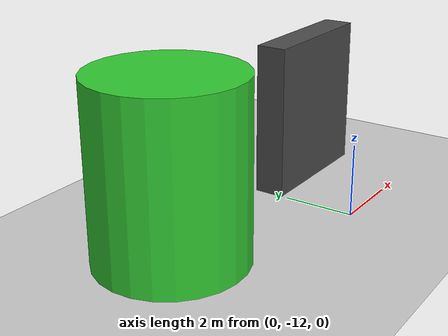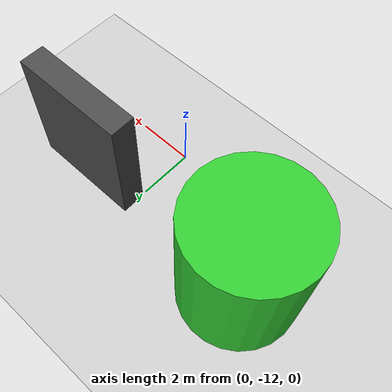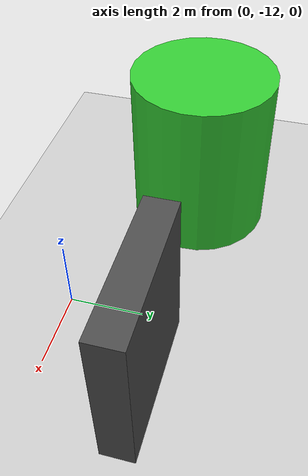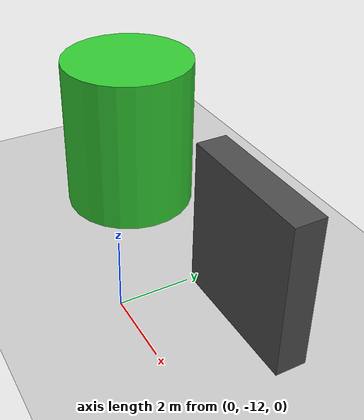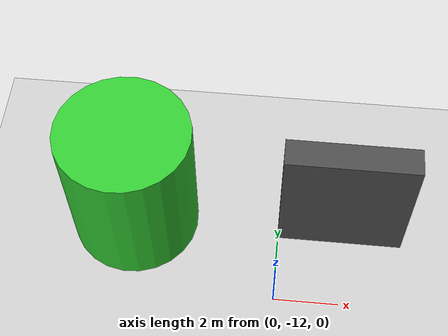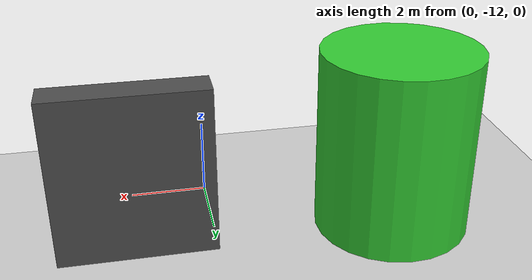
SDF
<?xml version='1.0'?>
<sdf version='1.6'>
  <world name='default'>
    <!-- Sun light -->
    <light name='sun' type='directional'>
      <cast_shadows>1</cast_shadows>
      <pose>0 0 10 0 0 0</pose>
      <diffuse>0.8 0.8 0.8 1</diffuse>
      <specular>0.2 0.2 0.2 1</specular>
      <attenuation>
        <range>1000</range>
        <constant>0.9</constant>
        <linear>0.01</linear>
        <quadratic>0.001</quadratic>
      </attenuation>
      <direction>-0.5 0.1 -0.9</direction>
    </light>

    <!-- Ground plane -->
    <model name='ground_plane'>
      <static>1</static>
      <link name='link'>
        <collision name='collision'>
          <geometry>
            <plane>
              <normal>0 0 1</normal>
              <size>100 100</size>
            </plane>
          </geometry>
          <surface>
            <contact>
              <collide_bitmask>65535</collide_bitmask>
              <ode/>
            </contact>
            <friction>
              <ode>
                <mu>100</mu>
                <mu2>50</mu2>
              </ode>
              <torsional><ode/></torsional>
            </friction>
            <bounce/>
          </surface>
          <max_contacts>10</max_contacts>
        </collision>
        <visual name='visual'>
          <cast_shadows>0</cast_shadows>
          <geometry>
            <plane>
              <normal>0 0 1</normal>
              <size>100 100</size>
            </plane>
          </geometry>
          <material>
            <script>
              <uri>file://media/materials/scripts/gazebo.material</uri>
              <n>Gazebo/Grey</n>
            </script>
          </material>
        </visual>
      </link>
    </model>

    <!-- Environment -->
    <magnetic_field>6e-06 2.3e-05 -4.2e-05</magnetic_field>
    <atmosphere type='adiabatic'/>
    <physics name='default_physics' default='0' type='ode'>
      <gravity>0 0 -9.8</gravity>
      <max_step_size>0.004</max_step_size>
      <real_time_factor>1</real_time_factor>
      <real_time_update_rate>250</real_time_update_rate>
    </physics>
    <scene>
      <ambient>0.4 0.4 0.4 1</ambient>
      <background>0.7 0.7 0.7 1</background>
      <shadows>1</shadows>
    </scene>
    <wind/>
    <spherical_coordinates>
      <surface_model>EARTH_WGS84</surface_model>
      <latitude_deg>0</latitude_deg>
      <longitude_deg>0</longitude_deg>
      <elevation>0</elevation>
      <heading_deg>0</heading_deg>
    </spherical_coordinates>

    <!-- ============ OBSTACLES (2) ============ -->
    <model name='obs_00'>
      <static>1</static>
      <link name='link'>
        <visual name='visual'>
          <geometry>
            <cylinder>
              <radius>1.9843</radius>
              <length>4.7060</length>
            </cylinder>
          </geometry>
          <material>
            <script>
              <n>Gazebo/Green</n>
              <uri>file://media/materials/scripts/gazebo.material</uri>
            </script>
            <ambient>0.2 0.8 0.2 1</ambient>
          </material>
        </visual>
        <collision name='collision'>
          <geometry>
            <cylinder>
              <radius>1.9843</radius>
              <length>4.7060</length>
            </cylinder>
          </geometry>
          <max_contacts>10</max_contacts>
          <surface>
            <contact><ode/></contact>
            <bounce/>
            <friction>
              <ode><mu>1</mu><mu2>1</mu2></ode>
              <torsional><ode/></torsional>
            </friction>
          </surface>
        </collision>
      </link>
      <pose>-4.5913 -9.4787 2.3530 0 0 0.1841</pose>
    </model>

    <model name='obs_01'>
      <static>1</static>
      <link name='link'>
        <visual name='visual'>
          <geometry>
            <box>
              <size>3.9089 0.8505 4.2843</size>
            </box>
          </geometry>
          <material>
            <script>
              <n>Gazebo/DarkGrey</n>
              <uri>file://media/materials/scripts/gazebo.material</uri>
            </script>
            <ambient>0.3 0.3 0.3 1</ambient>
          </material>
        </visual>
        <collision name='collision'>
          <geometry>
            <box>
              <size>3.9089 0.8505 4.2843</size>
            </box>
          </geometry>
          <max_contacts>10</max_contacts>
          <surface>
            <contact><ode/></contact>
            <bounce/>
            <friction>
              <ode><mu>1</mu><mu2>1</mu2></ode>
              <torsional><ode/></torsional>
            </friction>
          </surface>
        </collision>
      </link>
      <pose>1.9423 -9.4139 2.1422 0 0 3.1404</pose>
    </model>

    <!-- GUI camera -->
    <gui fullscreen='0'>
      <camera name='user_camera'>
        <pose>-15 0 18 0 0.85 0.15</pose>
        <view_controller>orbit</view_controller>
        <projection_type>perspective</projection_type>
      </camera>
    </gui>
  </world>
</sdf>
